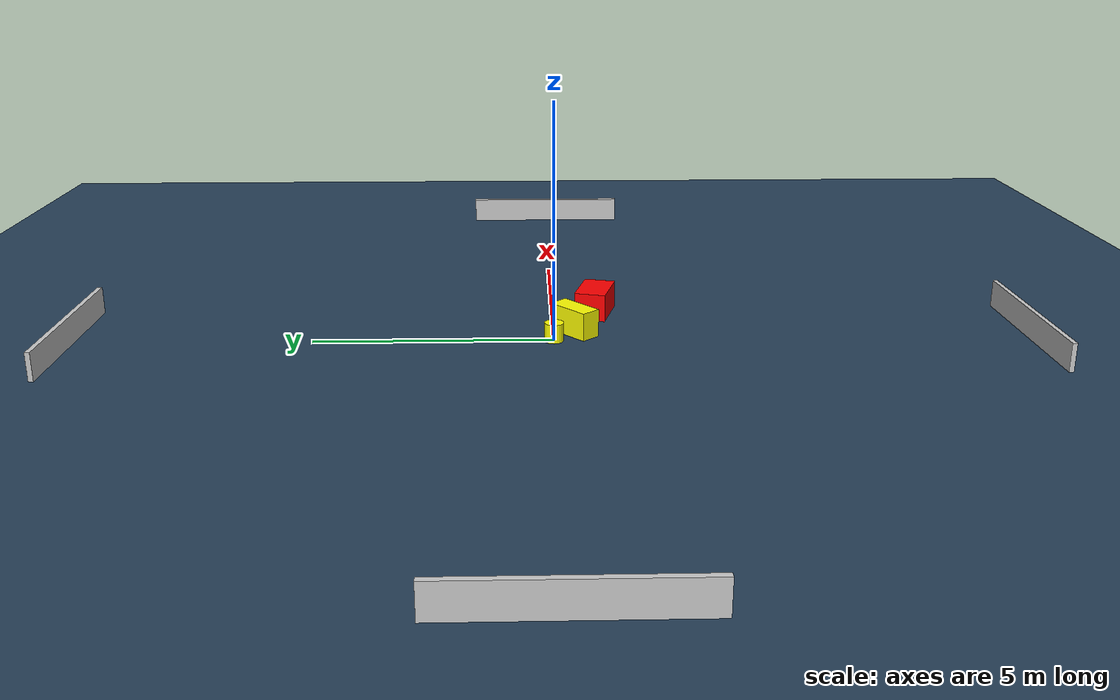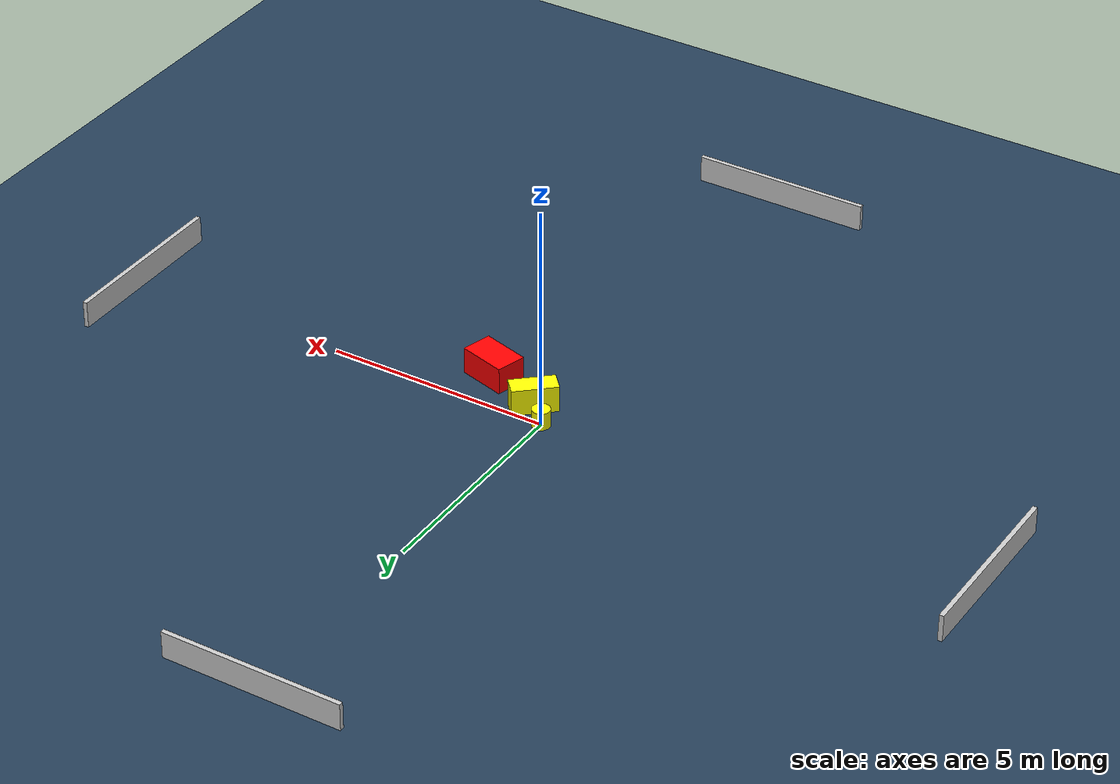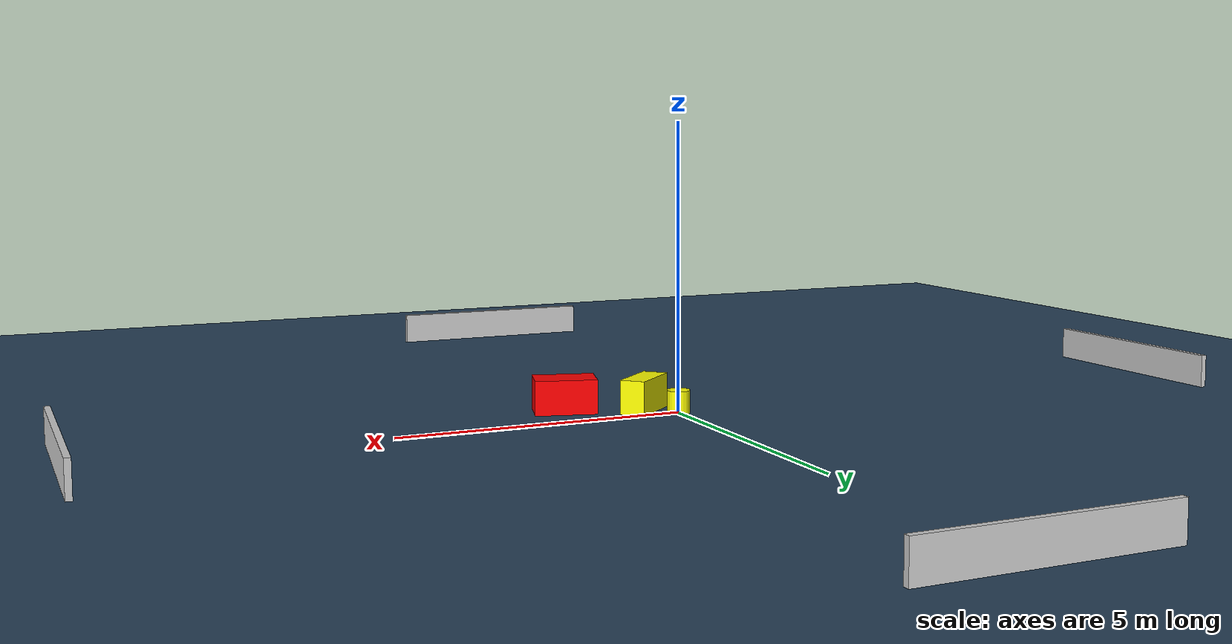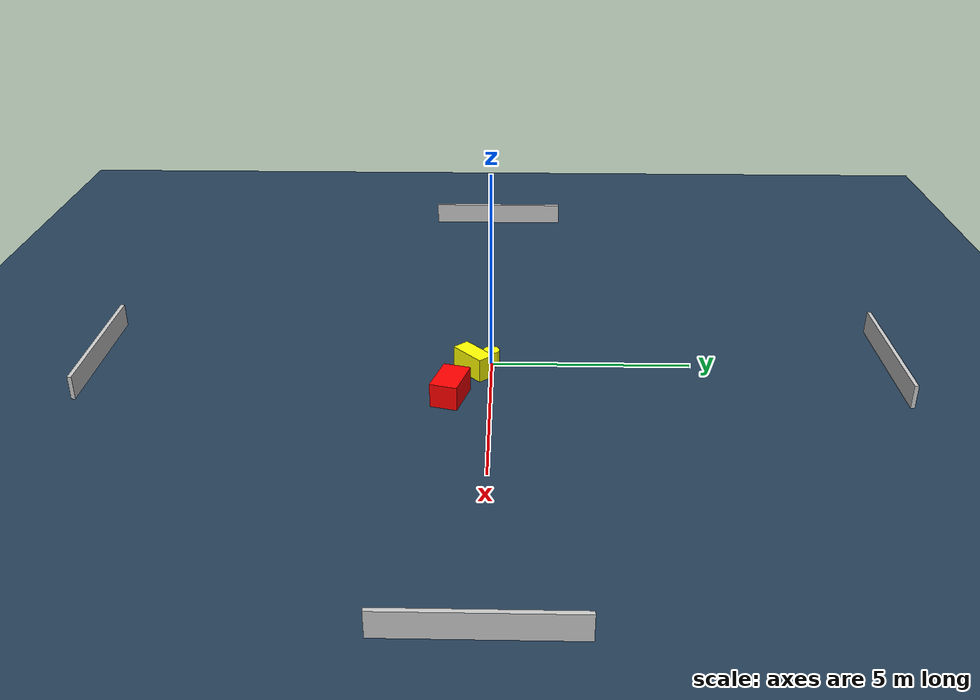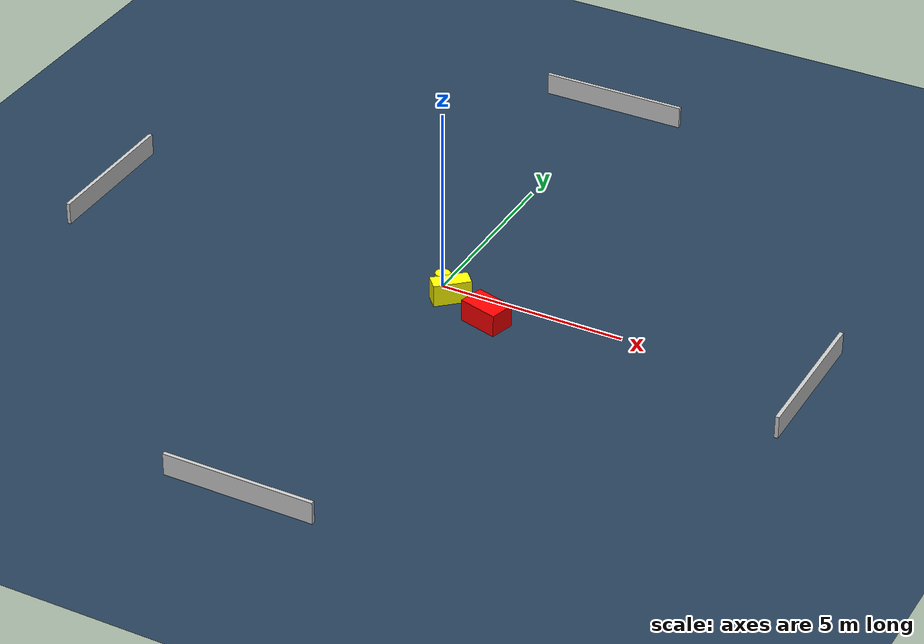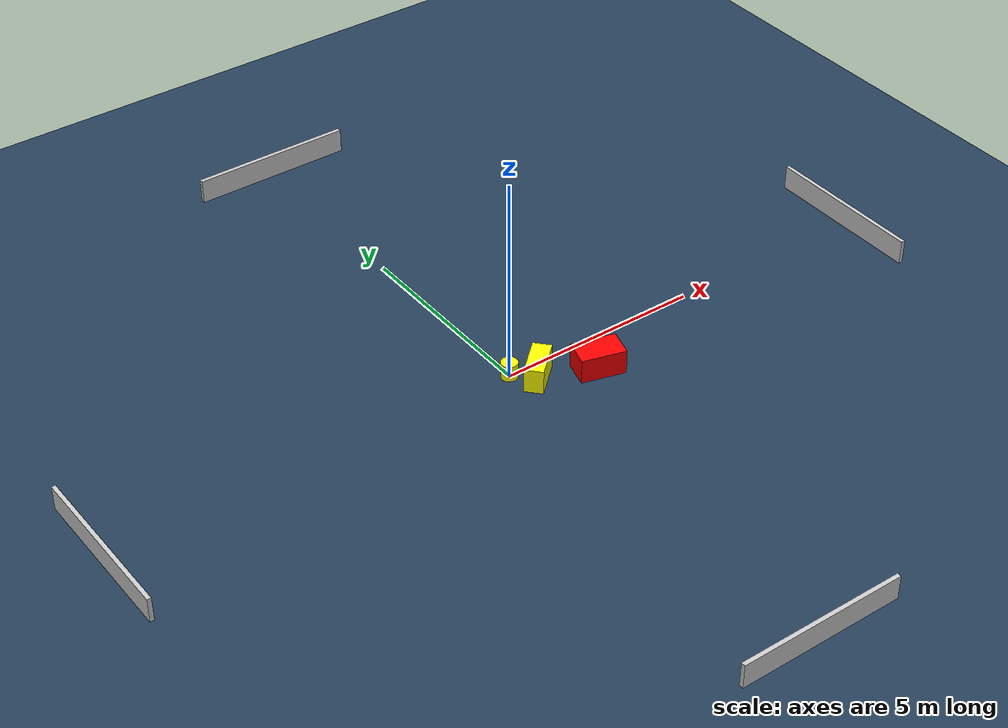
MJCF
<?xml version="1.0" ?>
<mujoco model="generated_environment">
  <option timestep="0.01" integrator="RK4" cone="elliptic"/>
  <default>
    <geom density="1"/>
  </default>
  <asset>
    <texture builtin="gradient" height="3072" name="skybox" rgb1="0.3 0.5 0.7" rgb2="0 0 0" type="skybox" width="512"/>
    <texture builtin="checker" height="300" name="groundplane" rgb1="0.2 0.3 0.4" rgb2="0.1 0.2 0.3" type="2d" width="300"/>
    <material name="groundplane" reflectance="0.2" texrepeat="5 5" texture="groundplane"/>
  </asset>
  <worldbody>
    <light dir="0 0 -1" directional="true" pos="0 0 1.5"/>
    <geom condim="3" friction="0.5 0.005 0.001" material="groundplane" name="floor" pos="0 0 0" size="0 0 0.05" type="plane"/>
    <body name="walls">
      <geom name="wall_1" condim="4" pos="-10.0 0.0 0.3" rgba="0.800000011920929 0.800000011920929 0.800000011920929 1.0" size="0.05 2.0 0.3" type="box"/>
      <geom name="wall_2" condim="4" pos="10.0 0.0 0.3" rgba="0.800000011920929 0.800000011920929 0.800000011920929 1.0" size="0.05 2.0 0.3" type="box"/>
      <geom name="wall_3" condim="4" pos="0.0 -10.0 0.3" rgba="0.800000011920929 0.800000011920929 0.800000011920929 1.0" size="2.0 0.05 0.3" type="box"/>
      <geom name="wall_4" condim="4" pos="0.0 10.0 0.3" rgba="0.800000011920929 0.800000011920929 0.800000011920929 1.0" size="2.0 0.05 0.3" type="box"/>
    </body>
    <body name="robot">
      <joint name="joint_x" type="slide" pos="0 0 0" axis="1 0 0"/>
      <joint name="joint_y" type="slide" pos="0 0 0" axis="0 1 0"/>
      <geom name="robot" type="cylinder" pos="0.0 0.0 0.2" size="0.2 0.2 0.0" mass="5.0" friction="1.0 0.005 0.0001" condim="4" rgba="1.0 1.0 0.0 1.0"/>
    </body>
    <body name="obstacle_1_movable">
      <geom name="obstacle_1_movable" condim="4" pos="0.453734767011134 -0.4426689217343647 0.3" euler="0 0 222.13942778324494" friction="0.0 0.005 0.001" rgba="1.0 1.0 0.0 1.0" size="0.49717200660481126 0.22251085125579173 0.3" type="box" mass="0.1"/>
      <joint type="free"/>
    </body>
    <body name="obstacle_2_static">
      <geom name="obstacle_2_static" condim="4" pos="1.735768181633434 -0.9495822361224585 0.3" euler="0 0 164.4094330543613" friction="0.0 0.005 0.001" rgba="1.0 0.0 0.0 1.0" size="0.5375778996052849 0.33844005248399445 0.3" type="box"/>
    </body>
  </worldbody>
  <actuator>
    <motor name="actuator_x" joint="joint_x" gear="1" ctrlrange="-1 1"/>
    <motor name="actuator_y" joint="joint_y" gear="1" ctrlrange="-1 1"/>
  </actuator>
</mujoco>
